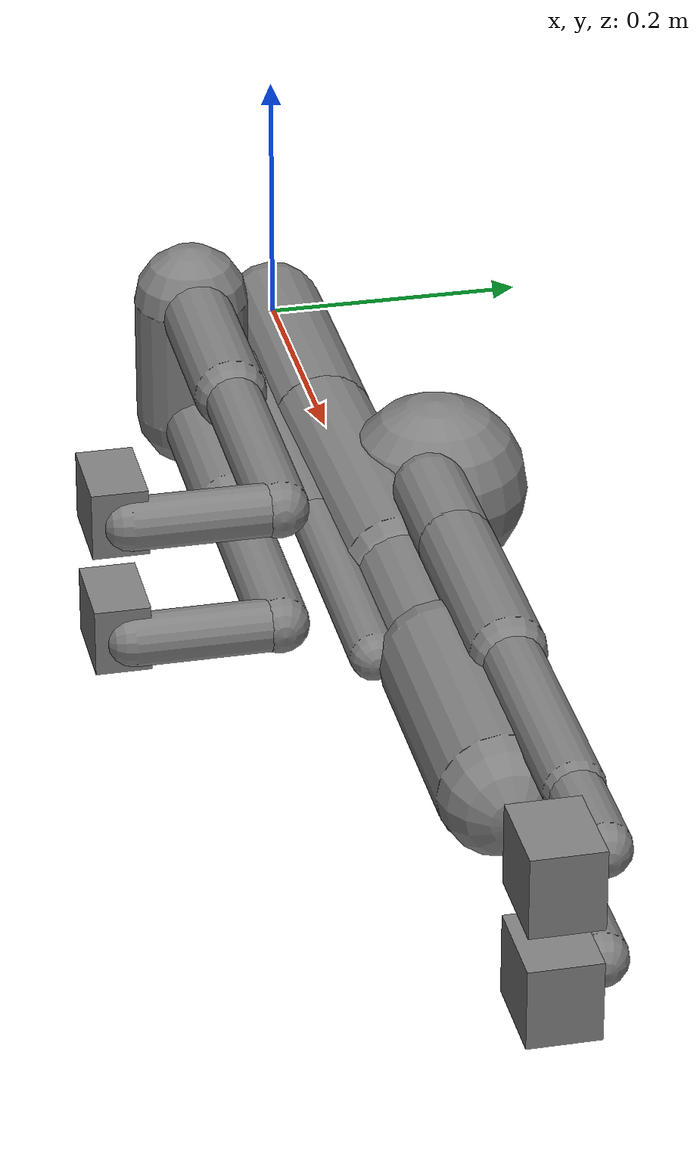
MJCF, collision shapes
<?xml version="1.0" ?>
<mujoco model="dog_v2">
  <compiler angle="degree" autolimits="true"/>
  <option timestep="0.005"/>
  <default>
    <geom contype="1" conaffinity="1" condim="3" density="1000"/>
    <joint limited="true" armature="0.01" damping="0.1"/>
  </default>
    <asset>
    <mesh name="bone_LeftUpLeg" file="../mesh/dog_v2_bones/bone_LeftUpLeg.obj"/>
    <mesh name="bone_LeftLeg" file="../mesh/dog_v2_bones/bone_LeftLeg.obj"/>
    <mesh name="bone_LeftShoulder" file="../mesh/dog_v2_bones/bone_LeftShoulder.obj"/>
    <mesh name="bone_LeftArm" file="../mesh/dog_v2_bones/bone_LeftArm.obj"/>
    <mesh name="bone_LeftForeArm" file="../mesh/dog_v2_bones/bone_LeftForeArm.obj"/>
    <mesh name="bone_LeftFoot" file="../mesh/dog_v2_bones/bone_LeftFoot.obj"/>
    <mesh name="bone_LeftHand" file="../mesh/dog_v2_bones/bone_LeftHand.obj"/>
    <mesh name="bone_RightUpLeg" file="../mesh/dog_v2_bones/bone_RightUpLeg.obj"/>
    <mesh name="bone_RightLeg" file="../mesh/dog_v2_bones/bone_RightLeg.obj"/>
    <mesh name="bone_RightShoulder" file="../mesh/dog_v2_bones/bone_RightShoulder.obj"/>
    <mesh name="bone_RightArm" file="../mesh/dog_v2_bones/bone_RightArm.obj"/>
    <mesh name="bone_RightForeArm" file="../mesh/dog_v2_bones/bone_RightForeArm.obj"/>
    <mesh name="bone_RightFoot" file="../mesh/dog_v2_bones/bone_RightFoot.obj"/>
    <mesh name="bone_RightHand" file="../mesh/dog_v2_bones/bone_RightHand.obj"/>
    <mesh name="bone_trunk" file="../mesh/dog_v2_bones/bone_trunk.obj"/>
    <mesh name="bone_Spine" file="../mesh/dog_v2_bones/bone_Spine.obj"/>
    <mesh name="bone_Spine1" file="../mesh/dog_v2_bones/bone_Spine1.obj"/>
    <mesh name="bone_Neck" file="../mesh/dog_v2_bones/bone_Neck.obj"/>
    <mesh name="bone_Head" file="../mesh/dog_v2_bones/bone_Head.obj"/>
    <mesh name="bone_Tail" file="../mesh/dog_v2_bones/bone_Tail.obj"/>
    <mesh name="bone_Tail1" file="../mesh/dog_v2_bones/bone_Tail1.obj"/>
  </asset>
  <worldbody>
    <body name="trunk" pos="0 0 0">
      <freejoint name="root"/>
      <geom name="geom_trunk" mass="3.5" type="capsule" fromto="0.0609197 -0.0780399 0.0487499 0.0609197 -0.0780397 -0.0487499" size="0.045" group="0" rgba="0.5 0.5 0.5 0"/>
          <geom name="bone_trunk" type="mesh" mesh="bone_trunk" contype="0" conaffinity="0" density="0" group="2" rgba="0.93 0.90 0.83 1"/>
      <body name="Spine" pos="0 0 0">
        <joint name="Spine_x" type="hinge" axis="1 0 0" pos="0 0 0" limited="false"/>
        <joint name="Spine_y" type="hinge" axis="0 1 0" pos="0 0 0" limited="false"/>
        <joint name="Spine_z" type="hinge" axis="0 0 1" pos="0 0 0" limited="false"/>
        <geom name="geom_Spine" mass="3.5" type="capsule" fromto="0 0 0 0.19342 0 0" size="0.04" group="0" rgba="0.5 0.5 0.5 0"/>
          <geom name="bone_Spine" type="mesh" mesh="bone_Spine" contype="0" conaffinity="0" density="0" group="2" rgba="0.93 0.90 0.83 1"/>
        <body name="Spine1" pos="0.19342 0 0">
          <joint name="Spine1_x" type="hinge" axis="1 0 0" pos="0 0 0" limited="false"/>
          <joint name="Spine1_y" type="hinge" axis="0 1 0" pos="0 0 0" limited="false"/>
          <joint name="Spine1_z" type="hinge" axis="0 0 1" pos="0 0 0" limited="false"/>
          <geom name="geom_Spine1" mass="1.5" type="capsule" fromto="0 0 0 0.22905 0.006108 0" size="0.04" group="0" rgba="0.5 0.5 0.5 0"/>
          <!-- Rib cage fill: bone_Spine1 mesh spans x[-0.07,0.27] y[-0.06,0.18] z[-0.07,0.07];
               radius bounded by the cage's lateral half-width. density=0 keeps mass identical. -->
          <geom name="geom_Spine1_ribcage" mass="3.6" type="sphere" size="0.07" pos="0.115 0.062 0" group="0" rgba="0.5 0.5 0.5 0"/>
          <geom name="bone_Spine1" type="mesh" mesh="bone_Spine1" contype="0" conaffinity="0" density="0" group="2" rgba="0.93 0.90 0.83 1"/>
          <body name="Neck" pos="0.22905 0.006108 0">
            <joint name="Neck_x" type="hinge" axis="1 0 0" pos="0 0 0" limited="false"/>
            <joint name="Neck_y" type="hinge" axis="0 1 0" pos="0 0 0" limited="false"/>
            <joint name="Neck_z" type="hinge" axis="0 0 1" pos="0 0 0" limited="false"/>
            <geom name="geom_Neck" mass="1.5" type="capsule" fromto="0 0 0 0.14252 0.000314335 0" size="0.035" group="0" rgba="0.5 0.5 0.5 0"/>
          <geom name="bone_Neck" type="mesh" mesh="bone_Neck" contype="0" conaffinity="0" density="0" group="2" rgba="0.93 0.90 0.83 1"/>
            <body name="Head" pos="0.14252 0.000314335 0">
              <joint name="Head_x" type="hinge" axis="1 0 0" pos="0 0 0" limited="false"/>
              <joint name="Head_y" type="hinge" axis="0 1 0" pos="0 0 0" limited="false"/>
              <joint name="Head_z" type="hinge" axis="0 0 1" pos="0 0 0" limited="false"/>
              <geom name="geom_Head" mass="1.3" type="capsule" fromto="0 0 0 0.17306 0 0" size="0.045" group="0" rgba="0.5 0.5 0.5 0"/>
          <geom name="bone_Head" type="mesh" mesh="bone_Head" contype="0" conaffinity="0" density="0" group="2" rgba="0.93 0.90 0.83 1"/>
            </body>
          </body>
          <body name="LeftShoulder" pos="0.201564 0.037666 0.043774">
            <joint name="LeftShoulder_x" type="hinge" axis="1 0 0" pos="0 0 0" limited="false"/>
            <joint name="LeftShoulder_y" type="hinge" axis="0 1 0" pos="0 0 0" limited="false"/>
            <joint name="LeftShoulder_z" type="hinge" axis="0 0 1" pos="0 0 0" limited="false"/>
            <geom name="geom_LeftShoulder" mass="0.55" type="capsule" fromto="0 0 0 0.08144 0 0" size="0.028" group="0" rgba="0.5 0.5 0.5 0"/>
          <geom name="bone_LeftShoulder" type="mesh" mesh="bone_LeftShoulder" contype="0" conaffinity="0" density="0" group="2" rgba="0.93 0.90 0.83 1"/>
            <body name="LeftArm" pos="0.08144 0 0">
              <joint name="LeftArm_x" type="hinge" axis="1 0 0" pos="0 0 0" limited="false"/>
              <joint name="LeftArm_y" type="hinge" axis="0 1 0" pos="0 0 0" limited="false"/>
              <joint name="LeftArm_z" type="hinge" axis="0 0 1" pos="0 0 0" limited="false"/>
              <geom name="geom_LeftArm" mass="0.45" type="capsule" fromto="0 0 0 0.154736 0 0" size="0.028" group="0" rgba="0.5 0.5 0.5 0"/>
          <geom name="bone_LeftArm" type="mesh" mesh="bone_LeftArm" contype="0" conaffinity="0" density="0" group="2" rgba="0.93 0.90 0.83 1"/>
              <body name="LeftForeArm" pos="0.154736 0 0">
                <joint name="LeftForeArm_x" type="hinge" axis="1 0 0" pos="0 0 0" limited="false"/>
                <joint name="LeftForeArm_y" type="hinge" axis="0 1 0" pos="0 0 0" limited="false"/>
                <joint name="LeftForeArm_z" type="hinge" axis="0 0 1" pos="0 0 0" limited="false"/>
                <geom name="geom_LeftForeArm" mass="0.25" type="capsule" fromto="0 0 0 0.181204 0 0" size="0.022" group="0" rgba="0.5 0.5 0.5 0"/>
          <geom name="bone_LeftForeArm" type="mesh" mesh="bone_LeftForeArm" contype="0" conaffinity="0" density="0" group="2" rgba="0.93 0.90 0.83 1"/>
                <body name="LeftHand" pos="0.181204 0 0">
                  <joint name="LeftHand_x" type="hinge" axis="1 0 0" pos="0 0 0" limited="false"/>
                  <joint name="LeftHand_y" type="hinge" axis="0 1 0" pos="0 0 0" limited="false"/>
                  <joint name="LeftHand_z" type="hinge" axis="0 0 1" pos="0 0 0" limited="false"/>
                  <geom name="geom_LeftHand" mass="0.07" type="capsule" fromto="0 0 0 0.073296 0 0" size="0.02" group="0" rgba="0.5 0.5 0.5 0"/>
                  <!-- Toe pad: bone mesh reaches x 0.122, hangs to y -0.062 -->
                  <geom name="geom_LeftHand_toes" type="box" pos="0.088 -0.036 0" size="0.034 0.026 0.030" density="0" group="0" rgba="0.5 0.5 0.5 0"/>
          <geom name="bone_LeftHand" type="mesh" mesh="bone_LeftHand" quat="0.7071068 0.7071068 0 0" contype="0" conaffinity="0" density="0" group="2" rgba="0.93 0.90 0.83 1"/>
                </body>
              </body>
            </body>
          </body>
          <body name="RightShoulder" pos="0.201564 0.037666 -0.043774">
            <joint name="RightShoulder_x" type="hinge" axis="1 0 0" pos="0 0 0" limited="false"/>
            <joint name="RightShoulder_y" type="hinge" axis="0 1 0" pos="0 0 0" limited="false"/>
            <joint name="RightShoulder_z" type="hinge" axis="0 0 1" pos="0 0 0" limited="false"/>
            <geom name="geom_RightShoulder" mass="0.55" type="capsule" fromto="0 0 0 0.08144 0 0.00154384" size="0.028" group="0" rgba="0.5 0.5 0.5 0"/>
          <geom name="bone_RightShoulder" type="mesh" mesh="bone_RightShoulder" contype="0" conaffinity="0" density="0" group="2" rgba="0.93 0.90 0.83 1"/>
            <body name="RightArm" pos="0.08144 0 0.00154384">
              <joint name="RightArm_x" type="hinge" axis="1 0 0" pos="0 0 0" limited="false"/>
              <joint name="RightArm_y" type="hinge" axis="0 1 0" pos="0 0 0" limited="false"/>
              <joint name="RightArm_z" type="hinge" axis="0 0 1" pos="0 0 0" limited="false"/>
              <geom name="geom_RightArm" mass="0.45" type="capsule" fromto="0 0 0 0.154736 0 0" size="0.028" group="0" rgba="0.5 0.5 0.5 0"/>
          <geom name="bone_RightArm" type="mesh" mesh="bone_RightArm" quat="0 1 0 0" contype="0" conaffinity="0" density="0" group="2" rgba="0.93 0.90 0.83 1"/>
              <body name="RightForeArm" pos="0.154736 0 0">
                <joint name="RightForeArm_x" type="hinge" axis="1 0 0" pos="0 0 0" limited="false"/>
                <joint name="RightForeArm_y" type="hinge" axis="0 1 0" pos="0 0 0" limited="false"/>
                <joint name="RightForeArm_z" type="hinge" axis="0 0 1" pos="0 0 0" limited="false"/>
                <geom name="geom_RightForeArm" mass="0.25" type="capsule" fromto="0 0 0 0.181204 0 0" size="0.022" group="0" rgba="0.5 0.5 0.5 0"/>
          <geom name="bone_RightForeArm" type="mesh" mesh="bone_RightForeArm" quat="0 1 0 0" contype="0" conaffinity="0" density="0" group="2" rgba="0.93 0.90 0.83 1"/>
                <body name="RightHand" pos="0.181204 0 0">
                  <joint name="RightHand_x" type="hinge" axis="1 0 0" pos="0 0 0" limited="false"/>
                  <joint name="RightHand_y" type="hinge" axis="0 1 0" pos="0 0 0" limited="false"/>
                  <joint name="RightHand_z" type="hinge" axis="0 0 1" pos="0 0 0" limited="false"/>
                  <geom name="geom_RightHand" mass="0.07" type="capsule" fromto="0 0 0 0.073296 0 0" size="0.02" group="0" rgba="0.5 0.5 0.5 0"/>
                  <!-- Toe pad: bone mesh reaches x 0.122, hangs to y -0.062 -->
                  <geom name="geom_RightHand_toes" type="box" pos="0.088 -0.036 0" size="0.034 0.026 0.030" density="0" group="0" rgba="0.5 0.5 0.5 0"/>
          <geom name="bone_RightHand" type="mesh" mesh="bone_RightHand" quat="0.7071068 0.7071068 0 0" contype="0" conaffinity="0" density="0" group="2" rgba="0.93 0.90 0.83 1"/>
                </body>
              </body>
            </body>
          </body>
        </body>
      </body>
      <body name="LeftUpLeg" pos="0.0609197 -0.0780399 0.0487499">
        <joint name="LeftUpLeg_x" type="hinge" axis="1 0 0" pos="0 0 0" limited="false"/>
        <joint name="LeftUpLeg_y" type="hinge" axis="0 1 0" pos="0 0 0" limited="false"/>
        <joint name="LeftUpLeg_z" type="hinge" axis="0 0 1" pos="0 0 0" limited="false"/>
        <geom name="geom_LeftUpLeg" mass="1.4" type="capsule" fromto="0 0 0 0.16288 0 0" size="0.028" group="0" rgba="0.5 0.5 0.5 0"/>
          <geom name="bone_LeftUpLeg" type="mesh" mesh="bone_LeftUpLeg" contype="0" conaffinity="0" density="0" group="2" rgba="0.93 0.90 0.83 1"/>
        <body name="LeftLeg" pos="0.16288 0 0">
          <joint name="LeftLeg_x" type="hinge" axis="1 0 0" pos="0 0 0" limited="false"/>
          <joint name="LeftLeg_y" type="hinge" axis="0 1 0" pos="0 0 0" limited="false"/>
          <joint name="LeftLeg_z" type="hinge" axis="0 0 1" pos="0 0 0" limited="false"/>
          <geom name="geom_LeftLeg" mass="0.7" type="capsule" fromto="0 0 0 0.18324 0 0" size="0.022" group="0" rgba="0.5 0.5 0.5 0"/>
          <geom name="bone_LeftLeg" type="mesh" mesh="bone_LeftLeg" contype="0" conaffinity="0" density="0" group="2" rgba="0.93 0.90 0.83 1"/>
          <body name="LeftFoot" pos="0.18324 0 0">
            <joint name="LeftFoot_x" type="hinge" axis="1 0 0" pos="0 0 0" limited="false"/>
            <joint name="LeftFoot_y" type="hinge" axis="0 1 0" pos="0 0 0" limited="false"/>
            <joint name="LeftFoot_z" type="hinge" axis="0 0 1" pos="0 0 0" limited="false"/>
            <geom name="geom_LeftFoot" mass="0.2" type="capsule" fromto="0 0 0 0 -0.109944 0" size="0.02" group="0" rgba="0.5 0.5 0.5 0"/>
            <!-- Toe pad: bone mesh reaches y -0.139, sweeps back to x -0.064 -->
            <geom name="geom_LeftFoot_toes" type="box" pos="-0.030 -0.118 0.002" size="0.034 0.021 0.026" density="0" group="0" rgba="0.5 0.5 0.5 0"/>
          <geom name="bone_LeftFoot" type="mesh" mesh="bone_LeftFoot" contype="0" conaffinity="0" density="0" group="2" rgba="0.93 0.90 0.83 1"/>
          </body>
        </body>
      </body>
      <body name="RightUpLeg" pos="0.0609197 -0.0780397 -0.0487499">
        <joint name="RightUpLeg_x" type="hinge" axis="1 0 0" pos="0 0 0" limited="false"/>
        <joint name="RightUpLeg_y" type="hinge" axis="0 1 0" pos="0 0 0" limited="false"/>
        <joint name="RightUpLeg_z" type="hinge" axis="0 0 1" pos="0 0 0" limited="false"/>
        <geom name="geom_RightUpLeg" mass="1.4" type="capsule" fromto="0 0 0 0.16288 0 0" size="0.028" group="0" rgba="0.5 0.5 0.5 0"/>
          <geom name="bone_RightUpLeg" type="mesh" mesh="bone_RightUpLeg" quat="0 1 0 0" contype="0" conaffinity="0" density="0" group="2" rgba="0.93 0.90 0.83 1"/>
        <body name="RightLeg" pos="0.16288 0 0">
          <joint name="RightLeg_x" type="hinge" axis="1 0 0" pos="0 0 0" limited="false"/>
          <joint name="RightLeg_y" type="hinge" axis="0 1 0" pos="0 0 0" limited="false"/>
          <joint name="RightLeg_z" type="hinge" axis="0 0 1" pos="0 0 0" limited="false"/>
          <geom name="geom_RightLeg" mass="0.7" type="capsule" fromto="0 0 0 0.18324 0 0" size="0.022" group="0" rgba="0.5 0.5 0.5 0"/>
          <geom name="bone_RightLeg" type="mesh" mesh="bone_RightLeg" contype="0" conaffinity="0" density="0" group="2" rgba="0.93 0.90 0.83 1"/>
          <body name="RightFoot" pos="0.18324 0 0">
            <joint name="RightFoot_x" type="hinge" axis="1 0 0" pos="0 0 0" limited="false"/>
            <joint name="RightFoot_y" type="hinge" axis="0 1 0" pos="0 0 0" limited="false"/>
            <joint name="RightFoot_z" type="hinge" axis="0 0 1" pos="0 0 0" limited="false"/>
            <geom name="geom_RightFoot" mass="0.2" type="capsule" fromto="0 0 0 0 -0.109944 0" size="0.02" group="0" rgba="0.5 0.5 0.5 0"/>
            <!-- Toe pad: bone mesh reaches y -0.139, sweeps back to x -0.064 -->
            <geom name="geom_RightFoot_toes" type="box" pos="-0.030 -0.118 0.002" size="0.034 0.021 0.026" density="0" group="0" rgba="0.5 0.5 0.5 0"/>
          <geom name="bone_RightFoot" type="mesh" mesh="bone_RightFoot" contype="0" conaffinity="0" density="0" group="2" rgba="0.93 0.90 0.83 1"/>
          </body>
        </body>
      </body>
      <body name="Tail" pos="0.1015 -0.0381 0">
        <joint name="Tail_x" type="hinge" axis="1 0 0" pos="0 0 0" limited="false"/>
        <joint name="Tail_y" type="hinge" axis="0 1 0" pos="0 0 0" limited="false"/>
        <joint name="Tail_z" type="hinge" axis="0 0 1" pos="0 0 0" limited="false"/>
        <geom name="geom_Tail" mass="0.22" type="capsule" fromto="0 0 0 0.2428 0 0" size="0.018" group="0" rgba="0.5 0.5 0.5 0"/>
          <geom name="bone_Tail" type="mesh" mesh="bone_Tail" contype="0" conaffinity="0" density="0" group="2" rgba="0.93 0.90 0.83 1"/>
        <body name="Tail1" pos="0.2428 0 0">
          <joint name="Tail1_x" type="hinge" axis="1 0 0" pos="0 0 0" limited="false"/>
          <joint name="Tail1_y" type="hinge" axis="0 1 0" pos="0 0 0" limited="false"/>
          <joint name="Tail1_z" type="hinge" axis="0 0 1" pos="0 0 0" limited="false"/>
          <geom name="geom_Tail1" mass="0.11" type="capsule" fromto="0 0 0 0.2015 0 0" size="0.018" group="0" rgba="0.5 0.5 0.5 0"/>
          <geom name="bone_Tail1" type="mesh" mesh="bone_Tail1" contype="0" conaffinity="0" density="0" group="2" rgba="0.93 0.90 0.83 1"/>
        </body>
      </body>
    </body>
  </worldbody>
  <actuator>
    <position name="Spine_x" joint="Spine_x" kp="120" kv="12" ctrlrange="-180 180" forcerange="-60 60"/>
    <position name="Spine_y" joint="Spine_y" kp="120" kv="12" ctrlrange="-180 180" forcerange="-60 60"/>
    <position name="Spine_z" joint="Spine_z" kp="120" kv="12" ctrlrange="-180 180" forcerange="-60 60"/>
    <position name="Spine1_x" joint="Spine1_x" kp="120" kv="12" ctrlrange="-180 180" forcerange="-60 60"/>
    <position name="Spine1_y" joint="Spine1_y" kp="120" kv="12" ctrlrange="-180 180" forcerange="-60 60"/>
    <position name="Spine1_z" joint="Spine1_z" kp="120" kv="12" ctrlrange="-180 180" forcerange="-60 60"/>
    <position name="Neck_x" joint="Neck_x" kp="40" kv="4" ctrlrange="-180 180" forcerange="-20 20"/>
    <position name="Neck_y" joint="Neck_y" kp="40" kv="4" ctrlrange="-180 180" forcerange="-20 20"/>
    <position name="Neck_z" joint="Neck_z" kp="40" kv="4" ctrlrange="-180 180" forcerange="-20 20"/>
    <position name="Head_x" joint="Head_x" kp="20" kv="2" ctrlrange="-180 180" forcerange="-10 10"/>
    <position name="Head_y" joint="Head_y" kp="20" kv="2" ctrlrange="-180 180" forcerange="-10 10"/>
    <position name="Head_z" joint="Head_z" kp="20" kv="2" ctrlrange="-180 180" forcerange="-10 10"/>
    <position name="LeftShoulder_x" joint="LeftShoulder_x" kp="80" kv="8" ctrlrange="-180 180" forcerange="-40 40"/>
    <position name="LeftShoulder_y" joint="LeftShoulder_y" kp="80" kv="8" ctrlrange="-180 180" forcerange="-40 40"/>
    <position name="LeftShoulder_z" joint="LeftShoulder_z" kp="80" kv="8" ctrlrange="-180 180" forcerange="-40 40"/>
    <position name="LeftArm_x" joint="LeftArm_x" kp="80" kv="8" ctrlrange="-180 180" forcerange="-40 40"/>
    <position name="LeftArm_y" joint="LeftArm_y" kp="80" kv="8" ctrlrange="-180 180" forcerange="-40 40"/>
    <position name="LeftArm_z" joint="LeftArm_z" kp="80" kv="8" ctrlrange="-180 180" forcerange="-40 40"/>
    <position name="LeftForeArm_x" joint="LeftForeArm_x" kp="60" kv="6" ctrlrange="-180 180" forcerange="-30 30"/>
    <position name="LeftForeArm_y" joint="LeftForeArm_y" kp="60" kv="6" ctrlrange="-180 180" forcerange="-30 30"/>
    <position name="LeftForeArm_z" joint="LeftForeArm_z" kp="60" kv="6" ctrlrange="-180 180" forcerange="-30 30"/>
    <position name="LeftHand_x" joint="LeftHand_x" kp="30" kv="3" ctrlrange="-180 180" forcerange="-15 15"/>
    <position name="LeftHand_y" joint="LeftHand_y" kp="30" kv="3" ctrlrange="-180 180" forcerange="-15 15"/>
    <position name="LeftHand_z" joint="LeftHand_z" kp="30" kv="3" ctrlrange="-180 180" forcerange="-15 15"/>
    <position name="RightShoulder_x" joint="RightShoulder_x" kp="80" kv="8" ctrlrange="-180 180" forcerange="-40 40"/>
    <position name="RightShoulder_y" joint="RightShoulder_y" kp="80" kv="8" ctrlrange="-180 180" forcerange="-40 40"/>
    <position name="RightShoulder_z" joint="RightShoulder_z" kp="80" kv="8" ctrlrange="-180 180" forcerange="-40 40"/>
    <position name="RightArm_x" joint="RightArm_x" kp="80" kv="8" ctrlrange="-180 180" forcerange="-40 40"/>
    <position name="RightArm_y" joint="RightArm_y" kp="80" kv="8" ctrlrange="-180 180" forcerange="-40 40"/>
    <position name="RightArm_z" joint="RightArm_z" kp="80" kv="8" ctrlrange="-180 180" forcerange="-40 40"/>
    <position name="RightForeArm_x" joint="RightForeArm_x" kp="60" kv="6" ctrlrange="-180 180" forcerange="-30 30"/>
    <position name="RightForeArm_y" joint="RightForeArm_y" kp="60" kv="6" ctrlrange="-180 180" forcerange="-30 30"/>
    <position name="RightForeArm_z" joint="RightForeArm_z" kp="60" kv="6" ctrlrange="-180 180" forcerange="-30 30"/>
    <position name="RightHand_x" joint="RightHand_x" kp="30" kv="3" ctrlrange="-180 180" forcerange="-15 15"/>
    <position name="RightHand_y" joint="RightHand_y" kp="30" kv="3" ctrlrange="-180 180" forcerange="-15 15"/>
    <position name="RightHand_z" joint="RightHand_z" kp="30" kv="3" ctrlrange="-180 180" forcerange="-15 15"/>
    <position name="LeftUpLeg_x" joint="LeftUpLeg_x" kp="80" kv="8" ctrlrange="-180 180" forcerange="-40 40"/>
    <position name="LeftUpLeg_y" joint="LeftUpLeg_y" kp="80" kv="8" ctrlrange="-180 180" forcerange="-40 40"/>
    <position name="LeftUpLeg_z" joint="LeftUpLeg_z" kp="80" kv="8" ctrlrange="-180 180" forcerange="-40 40"/>
    <position name="LeftLeg_x" joint="LeftLeg_x" kp="60" kv="6" ctrlrange="-180 180" forcerange="-30 30"/>
    <position name="LeftLeg_y" joint="LeftLeg_y" kp="60" kv="6" ctrlrange="-180 180" forcerange="-30 30"/>
    <position name="LeftLeg_z" joint="LeftLeg_z" kp="60" kv="6" ctrlrange="-180 180" forcerange="-30 30"/>
    <position name="LeftFoot_x" joint="LeftFoot_x" kp="30" kv="3" ctrlrange="-180 180" forcerange="-15 15"/>
    <position name="LeftFoot_y" joint="LeftFoot_y" kp="30" kv="3" ctrlrange="-180 180" forcerange="-15 15"/>
    <position name="LeftFoot_z" joint="LeftFoot_z" kp="30" kv="3" ctrlrange="-180 180" forcerange="-15 15"/>
    <position name="RightUpLeg_x" joint="RightUpLeg_x" kp="80" kv="8" ctrlrange="-180 180" forcerange="-40 40"/>
    <position name="RightUpLeg_y" joint="RightUpLeg_y" kp="80" kv="8" ctrlrange="-180 180" forcerange="-40 40"/>
    <position name="RightUpLeg_z" joint="RightUpLeg_z" kp="80" kv="8" ctrlrange="-180 180" forcerange="-40 40"/>
    <position name="RightLeg_x" joint="RightLeg_x" kp="60" kv="6" ctrlrange="-180 180" forcerange="-30 30"/>
    <position name="RightLeg_y" joint="RightLeg_y" kp="60" kv="6" ctrlrange="-180 180" forcerange="-30 30"/>
    <position name="RightLeg_z" joint="RightLeg_z" kp="60" kv="6" ctrlrange="-180 180" forcerange="-30 30"/>
    <position name="RightFoot_x" joint="RightFoot_x" kp="30" kv="3" ctrlrange="-180 180" forcerange="-15 15"/>
    <position name="RightFoot_y" joint="RightFoot_y" kp="30" kv="3" ctrlrange="-180 180" forcerange="-15 15"/>
    <position name="RightFoot_z" joint="RightFoot_z" kp="30" kv="3" ctrlrange="-180 180" forcerange="-15 15"/>
    <position name="Tail_x" joint="Tail_x" kp="2" kv="0.2" ctrlrange="-180 180" forcerange="-1 1"/>
    <position name="Tail_y" joint="Tail_y" kp="2" kv="0.2" ctrlrange="-180 180" forcerange="-1 1"/>
    <position name="Tail_z" joint="Tail_z" kp="2" kv="0.2" ctrlrange="-180 180" forcerange="-1 1"/>
    <position name="Tail1_x" joint="Tail1_x" kp="2" kv="0.2" ctrlrange="-180 180" forcerange="-1 1"/>
    <position name="Tail1_y" joint="Tail1_y" kp="2" kv="0.2" ctrlrange="-180 180" forcerange="-1 1"/>
    <position name="Tail1_z" joint="Tail1_z" kp="2" kv="0.2" ctrlrange="-180 180" forcerange="-1 1"/>
  </actuator>
</mujoco>
